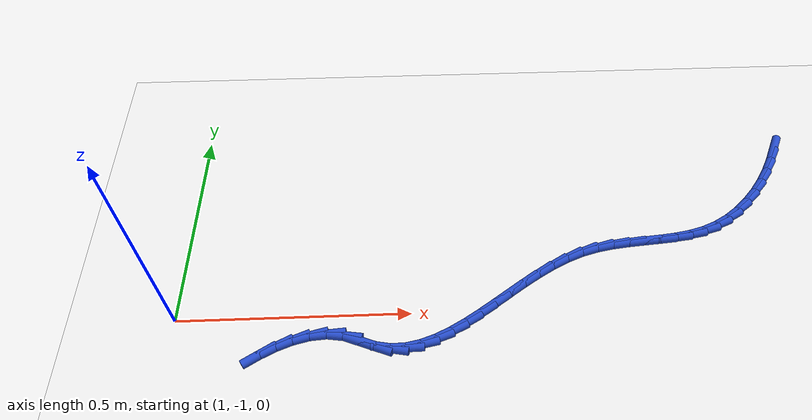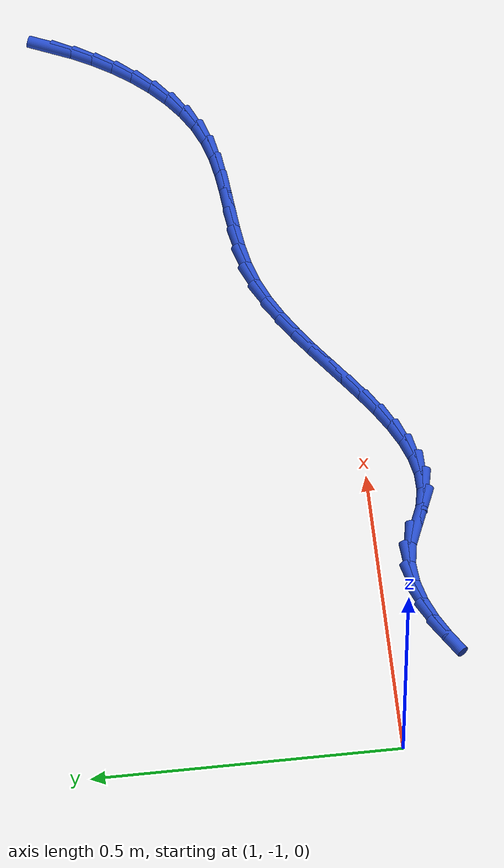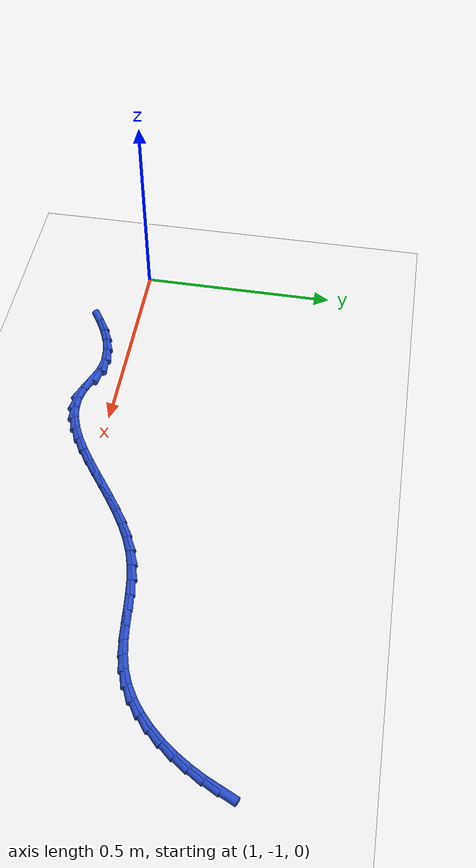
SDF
<sdf version="1.6">
 <world name="default">
  <model name="ground_plane">
   <static>1</static>
   <link name="link">
    <collision name="collision">
     <geometry><plane><normal>0 0 1</normal><size>100 100</size></plane></geometry>
     <surface><friction><ode><mu>100</mu><mu2>50</mu2></ode></friction></surface>
    </collision>
    <visual name="visual">
     <cast_shadows>0</cast_shadows>
     <geometry><plane><normal>0 0 1</normal><size>100 100</size></plane></geometry>
     <material>
      <script><uri>file://media/materials/scripts/gazebo.material</uri><name>Gazebo/WhiteGlow</name></script>
     </material>
    </visual>
   </link>
  </model>
  <model name="line">
   <link name="link_137">
    <pose>2.3708870570648264 -0.5731935673799287 0.01 0 1.57 1.1596298621825376</pose>
    <collision name="collision">
     <geometry><cylinder><radius>0.01</radius><length>0.08</length></cylinder></geometry>
    </collision>
    <visual name="visual">
     <material>
      <script><name>Gazebo/Blue</name><uri>file://media/materials/scripts/gazebo.material</uri></script>
     </material>
     <geometry><cylinder><radius>0.01</radius><length>0.08</length></cylinder></geometry>
    </visual>
   </link>
   <link name="link_138">
    <pose>2.3558920071798677 -0.6075844067601226 0.01 0 1.57 1.0917882113573463</pose>
    <collision name="collision">
     <geometry><cylinder><radius>0.01</radius><length>0.08</length></cylinder></geometry>
    </collision>
    <visual name="visual">
     <material>
      <script><name>Gazebo/Blue</name><uri>file://media/materials/scripts/gazebo.material</uri></script>
     </material>
     <geometry><cylinder><radius>0.01</radius><length>0.08</length></cylinder></geometry>
    </visual>
   </link>
   <link name="link_139">
    <pose>2.3384465963366274 -0.641175212286273 0.01 0 1.57 1.0210440977645936</pose>
    <collision name="collision">
     <geometry><cylinder><radius>0.01</radius><length>0.08</length></cylinder></geometry>
    </collision>
    <visual name="visual">
     <material>
      <script><name>Gazebo/Blue</name><uri>file://media/materials/scripts/gazebo.material</uri></script>
     </material>
     <geometry><cylinder><radius>0.01</radius><length>0.08</length></cylinder></geometry>
    </visual>
   </link>
   <link name="link_140">
    <pose>2.3186629321636327 -0.6734611374246325 0.01 0 1.57 0.9453280579679894</pose>
    <collision name="collision">
     <geometry><cylinder><radius>0.01</radius><length>0.08</length></cylinder></geometry>
    </collision>
    <visual name="visual">
     <material>
      <script><name>Gazebo/Blue</name><uri>file://media/materials/scripts/gazebo.material</uri></script>
     </material>
     <geometry><cylinder><radius>0.01</radius><length>0.08</length></cylinder></geometry>
    </visual>
   </link>
   <link name="link_141">
    <pose>2.296653122289414 -0.7039373356414512 0.01 0 1.57 0.8624707876830311</pose>
    <collision name="collision">
     <geometry><cylinder><radius>0.01</radius><length>0.08</length></cylinder></geometry>
    </collision>
    <visual name="visual">
     <material>
      <script><name>Gazebo/Blue</name><uri>file://media/materials/scripts/gazebo.material</uri></script>
     </material>
     <geometry><cylinder><radius>0.01</radius><length>0.08</length></cylinder></geometry>
    </visual>
   </link>
   <link name="link_142">
    <pose>2.2725292743425003 -0.7320989604029818 0.01 0 1.57 0.7701748529306178</pose>
    <collision name="collision">
     <geometry><cylinder><radius>0.01</radius><length>0.08</length></cylinder></geometry>
    </collision>
    <visual name="visual">
     <material>
      <script><name>Gazebo/Blue</name><uri>file://media/materials/scripts/gazebo.material</uri></script>
     </material>
     <geometry><cylinder><radius>0.01</radius><length>0.08</length></cylinder></geometry>
    </visual>
   </link>
   <link name="link_143">
    <pose>2.2464034959514216 -0.7574411651754763 0.01 0 1.57 0.6660945845559505</pose>
    <collision name="collision">
     <geometry><cylinder><radius>0.01</radius><length>0.08</length></cylinder></geometry>
    </collision>
    <visual name="visual">
     <material>
      <script><name>Gazebo/Blue</name><uri>file://media/materials/scripts/gazebo.material</uri></script>
     </material>
     <geometry><cylinder><radius>0.01</radius><length>0.08</length></cylinder></geometry>
    </visual>
   </link>
   <link name="link_144">
    <pose>2.2183878947447058 -0.7794591034251869 0.01 0 1.57 0.5481044729739689</pose>
    <collision name="collision">
     <geometry><cylinder><radius>0.01</radius><length>0.08</length></cylinder></geometry>
    </collision>
    <visual name="visual">
     <material>
      <script><name>Gazebo/Blue</name><uri>file://media/materials/scripts/gazebo.material</uri></script>
     </material>
     <geometry><cylinder><radius>0.01</radius><length>0.08</length></cylinder></geometry>
    </visual>
   </link>
   <link name="link_145">
    <pose>2.1885945783508842 -0.7976479286183644 0.01 0 1.57 0.41503316987592326</pose>
    <collision name="collision">
     <geometry><cylinder><radius>0.01</radius><length>0.08</length></cylinder></geometry>
    </collision>
    <visual name="visual">
     <material>
      <script><name>Gazebo/Blue</name><uri>file://media/materials/scripts/gazebo.material</uri></script>
     </material>
     <geometry><cylinder><radius>0.01</radius><length>0.08</length></cylinder></geometry>
    </visual>
   </link>
   <link name="link_146">
    <pose>2.1571363699446304 -0.8115093065041733 0.01 0 1.57 0.2833095171176862</pose>
    <collision name="collision">
     <geometry><cylinder><radius>0.01</radius><length>0.08</length></cylinder></geometry>
    </collision>
    <visual name="visual">
     <material>
      <script><name>Gazebo/Blue</name><uri>file://media/materials/scripts/gazebo.material</uri></script>
     </material>
     <geometry><cylinder><radius>0.01</radius><length>0.08</length></cylinder></geometry>
    </visual>
   </link>
   <link name="link_147">
    <pose>2.1241873181427695 -0.8211021239191243 0.01 0 1.57 0.18406096016276424</pose>
    <collision name="collision">
     <geometry><cylinder><radius>0.01</radius><length>0.08</length></cylinder></geometry>
    </collision>
    <visual name="visual">
     <material>
      <script><name>Gazebo/Blue</name><uri>file://media/materials/scripts/gazebo.material</uri></script>
     </material>
     <geometry><cylinder><radius>0.01</radius><length>0.08</length></cylinder></geometry>
    </visual>
   </link>
   <link name="link_148">
    <pose>2.0900287215490065 -0.8274613644367077 0.01 0 1.57 0.12083839831468332</pose>
    <collision name="collision">
     <geometry><cylinder><radius>0.01</radius><length>0.08</length></cylinder></geometry>
    </collision>
    <visual name="visual">
     <material>
      <script><name>Gazebo/Blue</name><uri>file://media/materials/scripts/gazebo.material</uri></script>
     </material>
     <geometry><cylinder><radius>0.01</radius><length>0.08</length></cylinder></geometry>
    </visual>
   </link>
   <link name="link_149">
    <pose>2.0549527161551473 -0.8317206441754708 0.01 0 1.57 0.09197553911301995</pose>
    <collision name="collision">
     <geometry><cylinder><radius>0.01</radius><length>0.08</length></cylinder></geometry>
    </collision>
    <visual name="visual">
     <material>
      <script><name>Gazebo/Blue</name><uri>file://media/materials/scripts/gazebo.material</uri></script>
     </material>
     <geometry><cylinder><radius>0.01</radius><length>0.08</length></cylinder></geometry>
    </visual>
   </link>
   <link name="link_150">
    <pose>2.0192514379529967 -0.8350135792539621 0.01 0 1.57 0.09573153017924131</pose>
    <collision name="collision">
     <geometry><cylinder><radius>0.01</radius><length>0.08</length></cylinder></geometry>
    </collision>
    <visual name="visual">
     <material>
      <script><name>Gazebo/Blue</name><uri>file://media/materials/scripts/gazebo.material</uri></script>
     </material>
     <geometry><cylinder><radius>0.01</radius><length>0.08</length></cylinder></geometry>
    </visual>
   </link>
   <link name="link_151">
    <pose>1.9832170229343595 -0.8384737857907304 0.01 0 1.57 0.13121780855544637</pose>
    <collision name="collision">
     <geometry><cylinder><radius>0.01</radius><length>0.08</length></cylinder></geometry>
    </collision>
    <visual name="visual">
     <material>
      <script><name>Gazebo/Blue</name><uri>file://media/materials/scripts/gazebo.material</uri></script>
     </material>
     <geometry><cylinder><radius>0.01</radius><length>0.08</length></cylinder></geometry>
    </visual>
   </link>
   <link name="link_152">
    <pose>1.9471416070910406 -0.8432348799043231 0.01 0 1.57 0.19822054271662398</pose>
    <collision name="collision">
     <geometry><cylinder><radius>0.01</radius><length>0.08</length></cylinder></geometry>
    </collision>
    <visual name="visual">
     <material>
      <script><name>Gazebo/Blue</name><uri>file://media/materials/scripts/gazebo.material</uri></script>
     </material>
     <geometry><cylinder><radius>0.01</radius><length>0.08</length></cylinder></geometry>
    </visual>
   </link>
   <link name="link_153">
    <pose>1.9113173264148455 -0.8504304777132893 0.01 0 1.57 0.2960983014942142</pose>
    <collision name="collision">
     <geometry><cylinder><radius>0.01</radius><length>0.08</length></cylinder></geometry>
    </collision>
    <visual name="visual">
     <material>
      <script><name>Gazebo/Blue</name><uri>file://media/materials/scripts/gazebo.material</uri></script>
     </material>
     <geometry><cylinder><radius>0.01</radius><length>0.08</length></cylinder></geometry>
    </visual>
   </link>
   <link name="link_154">
    <pose>1.8760361981524536 -0.8611935621595855 0.01 0 1.57 0.40958274245974613</pose>
    <collision name="collision">
     <geometry><cylinder><radius>0.01</radius><length>0.08</length></cylinder></geometry>
    </collision>
    <visual name="visual">
     <material>
      <script><name>Gazebo/Blue</name><uri>file://media/materials/scripts/gazebo.material</uri></script>
     </material>
     <geometry><cylinder><radius>0.01</radius><length>0.08</length></cylinder></geometry>
    </visual>
   </link>
   <link name="link_155">
    <pose>1.841501908312536 -0.876186113512509 0.01 0 1.57 0.5022183117229172</pose>
    <collision name="collision">
     <geometry><cylinder><radius>0.01</radius><length>0.08</length></cylinder></geometry>
    </collision>
    <visual name="visual">
     <material>
      <script><name>Gazebo/Blue</name><uri>file://media/materials/scripts/gazebo.material</uri></script>
     </material>
     <geometry><cylinder><radius>0.01</radius><length>0.08</length></cylinder></geometry>
    </visual>
   </link>
   <link name="link_156">
    <pose>1.8076732609886215 -0.8947643448051819 0.01 0 1.57 0.5702456691843218</pose>
    <collision name="collision">
     <geometry><cylinder><radius>0.01</radius><length>0.08</length></cylinder></geometry>
    </collision>
    <visual name="visual">
     <material>
      <script><name>Gazebo/Blue</name><uri>file://media/materials/scripts/gazebo.material</uri></script>
     </material>
     <geometry><cylinder><radius>0.01</radius><length>0.08</length></cylinder></geometry>
    </visual>
   </link>
   <link name="link_157">
    <pose>1.774466971709071 -0.916060043067765 0.01 0 1.57 0.6164125976126277</pose>
    <collision name="collision">
     <geometry><cylinder><radius>0.01</radius><length>0.08</length></cylinder></geometry>
    </collision>
    <visual name="visual">
     <material>
      <script><name>Gazebo/Blue</name><uri>file://media/materials/scripts/gazebo.material</uri></script>
     </material>
     <geometry><cylinder><radius>0.01</radius><length>0.08</length></cylinder></geometry>
    </visual>
   </link>
   <link name="link_158">
    <pose>1.7417997560022476 -0.9392049953304185 0.01 0 1.57 0.6428535377749413</pose>
    <collision name="collision">
     <geometry><cylinder><radius>0.01</radius><length>0.08</length></cylinder></geometry>
    </collision>
    <visual name="visual">
     <material>
      <script><name>Gazebo/Blue</name><uri>file://media/materials/scripts/gazebo.material</uri></script>
     </material>
     <geometry><cylinder><radius>0.01</radius><length>0.08</length></cylinder></geometry>
    </visual>
   </link>
   <link name="link_159">
    <pose>1.7095883293965115 -0.9633309886233036 0.01 0 1.57 0.6506909884554434</pose>
    <collision name="collision">
     <geometry><cylinder><radius>0.01</radius><length>0.08</length></cylinder></geometry>
    </collision>
    <visual name="visual">
     <material>
      <script><name>Gazebo/Blue</name><uri>file://media/materials/scripts/gazebo.material</uri></script>
     </material>
     <geometry><cylinder><radius>0.01</radius><length>0.08</length></cylinder></geometry>
    </visual>
   </link>
   <link name="link_160">
    <pose>1.6777494074202242 -0.9875698099765813 0.01 0 1.57 0.6398633781134743</pose>
    <collision name="collision">
     <geometry><cylinder><radius>0.01</radius><length>0.08</length></cylinder></geometry>
    </collision>
    <visual name="visual">
     <material>
      <script><name>Gazebo/Blue</name><uri>file://media/materials/scripts/gazebo.material</uri></script>
     </material>
     <geometry><cylinder><radius>0.01</radius><length>0.08</length></cylinder></geometry>
    </visual>
   </link>
   <link name="link_161">
    <pose>1.646199705601747 -1.0110532464204123 0.01 0 1.57 0.6089938062599312</pose>
    <collision name="collision">
     <geometry><cylinder><radius>0.01</radius><length>0.08</length></cylinder></geometry>
    </collision>
    <visual name="visual">
     <material>
      <script><name>Gazebo/Blue</name><uri>file://media/materials/scripts/gazebo.material</uri></script>
     </material>
     <geometry><cylinder><radius>0.01</radius><length>0.08</length></cylinder></geometry>
    </visual>
   </link>
   <link name="link_162">
    <pose>1.6148559394694408 -1.0329130849849586 0.01 0 1.57 0.5552487147375395</pose>
    <collision name="collision">
     <geometry><cylinder><radius>0.01</radius><length>0.08</length></cylinder></geometry>
    </collision>
    <visual name="visual">
     <material>
      <script><name>Gazebo/Blue</name><uri>file://media/materials/scripts/gazebo.material</uri></script>
     </material>
     <geometry><cylinder><radius>0.01</radius><length>0.08</length></cylinder></geometry>
    </visual>
   </link>
   <link name="link_163">
    <pose>1.5836348245516676 -1.0522811127003786 0.01 0 1.57 0.47429214312702694</pose>
    <collision name="collision">
     <geometry><cylinder><radius>0.01</radius><length>0.08</length></cylinder></geometry>
    </collision>
    <visual name="visual">
     <material>
      <script><name>Gazebo/Blue</name><uri>file://media/materials/scripts/gazebo.material</uri></script>
     </material>
     <geometry><cylinder><radius>0.01</radius><length>0.08</length></cylinder></geometry>
    </visual>
   </link>
   <link name="link_164">
    <pose>1.5524530763767892 -1.0682891165968353 0.01 0 1.57 0.3607385783768617</pose>
    <collision name="collision">
     <geometry><cylinder><radius>0.01</radius><length>0.08</length></cylinder></geometry>
    </collision>
    <visual name="visual">
     <material>
      <script><name>Gazebo/Blue</name><uri>file://media/materials/scripts/gazebo.material</uri></script>
     </material>
     <geometry><cylinder><radius>0.01</radius><length>0.08</length></cylinder></geometry>
    </visual>
   </link>
   <link name="link_165">
    <pose>1.5212274104731662 -1.080068883704489 0.01 0 1.57 0.21002106340397958</pose>
    <collision name="collision">
     <geometry><cylinder><radius>0.01</radius><length>0.08</length></cylinder></geometry>
    </collision>
    <visual name="visual">
     <material>
      <script><name>Gazebo/Blue</name><uri>file://media/materials/scripts/gazebo.material</uri></script>
     </material>
     <geometry><cylinder><radius>0.01</radius><length>0.08</length></cylinder></geometry>
    </visual>
   </link>
   <link name="link_166">
    <pose>1.489874542369159 -1.0867522010535 0.01 0 1.57 0.02276470540317119</pose>
    <collision name="collision">
     <geometry><cylinder><radius>0.01</radius><length>0.08</length></cylinder></geometry>
    </collision>
    <visual name="visual">
     <material>
      <script><name>Gazebo/Blue</name><uri>file://media/materials/scripts/gazebo.material</uri></script>
     </material>
     <geometry><cylinder><radius>0.01</radius><length>0.08</length></cylinder></geometry>
    </visual>
   </link>
   <link name="link_167">
    <pose>1.4583111875931318 -1.08747085567403 0.01 0 1.57 -0.18962049468895933</pose>
    <collision name="collision">
     <geometry><cylinder><radius>0.01</radius><length>0.08</length></cylinder></geometry>
    </collision>
    <visual name="visual">
     <material>
      <script><name>Gazebo/Blue</name><uri>file://media/materials/scripts/gazebo.material</uri></script>
     </material>
     <geometry><cylinder><radius>0.01</radius><length>0.08</length></cylinder></geometry>
    </visual>
   </link>
   <link name="link_168">
    <pose>1.4264540616734436 -1.0813566345962393 0.01 0 1.57 -0.38144443856768184</pose>
    <collision name="collision">
     <geometry><cylinder><radius>0.01</radius><length>0.08</length></cylinder></geometry>
    </collision>
    <visual name="visual">
     <material>
      <script><name>Gazebo/Blue</name><uri>file://media/materials/scripts/gazebo.material</uri></script>
     </material>
     <geometry><cylinder><radius>0.01</radius><length>0.08</length></cylinder></geometry>
    </visual>
   </link>
   <link name="link_169">
    <pose>1.39414710065001 -1.0683986821193725 0.01 0 1.57 -0.37614163922672444</pose>
    <collision name="collision">
     <geometry><cylinder><radius>0.01</radius><length>0.08</length></cylinder></geometry>
    </collision>
    <visual name="visual">
     <material>
      <script><name>Gazebo/Blue</name><uri>file://media/materials/scripts/gazebo.material</uri></script>
     </material>
     <geometry><cylinder><radius>0.01</radius><length>0.08</length></cylinder></geometry>
    </visual>
   </link>
   <link name="link_170">
    <pose>1.360674596785553 -1.0551788607757067 0.01 0 1.57 -0.14844008665441516</pose>
    <collision name="collision">
     <geometry><cylinder><radius>0.01</radius><length>0.08</length></cylinder></geometry>
    </collision>
    <visual name="visual">
     <material>
      <script><name>Gazebo/Blue</name><uri>file://media/materials/scripts/gazebo.material</uri></script>
     </material>
     <geometry><cylinder><radius>0.01</radius><length>0.08</length></cylinder></geometry>
    </visual>
   </link>
   <link name="link_171">
    <pose>1.32539173273124 -1.049902659585112 0.01 0 1.57 0.08625628305685425</pose>
    <collision name="collision">
     <geometry><cylinder><radius>0.01</radius><length>0.08</length></cylinder></geometry>
    </collision>
    <visual name="visual">
     <material>
      <script><name>Gazebo/Blue</name><uri>file://media/materials/scripts/gazebo.material</uri></script>
     </material>
     <geometry><cylinder><radius>0.01</radius><length>0.08</length></cylinder></geometry>
    </visual>
   </link>
   <link name="link_172">
    <pose>1.2894448913554577 -1.053011013204837 0.01 0 1.57 0.26103259813196683</pose>
    <collision name="collision">
     <geometry><cylinder><radius>0.01</radius><length>0.08</length></cylinder></geometry>
    </collision>
    <visual name="visual">
     <material>
      <script><name>Gazebo/Blue</name><uri>file://media/materials/scripts/gazebo.material</uri></script>
     </material>
     <geometry><cylinder><radius>0.01</radius><length>0.08</length></cylinder></geometry>
    </visual>
   </link>
   <link name="link_173">
    <pose>1.254570284004978 -1.0623269805216649 0.01 0 1.57 0.3967693853571164</pose>
    <collision name="collision">
     <geometry><cylinder><radius>0.01</radius><length>0.08</length></cylinder></geometry>
    </collision>
    <visual name="visual">
     <material>
      <script><name>Gazebo/Blue</name><uri>file://media/materials/scripts/gazebo.material</uri></script>
     </material>
     <geometry><cylinder><radius>0.01</radius><length>0.08</length></cylinder></geometry>
    </visual>
   </link>
   <link name="link_174">
    <pose>1.221669807885222 -1.076111960867145 0.01 0 1.57 0.5021987192325162</pose>
    <collision name="collision">
     <geometry><cylinder><radius>0.01</radius><length>0.08</length></cylinder></geometry>
    </collision>
    <visual name="visual">
     <material>
      <script><name>Gazebo/Blue</name><uri>file://media/materials/scripts/gazebo.material</uri></script>
     </material>
     <geometry><cylinder><radius>0.01</radius><length>0.08</length></cylinder></geometry>
    </visual>
   </link>
   <link name="link_175">
    <pose>1.1903907973564898 -1.0932891687794724 0.01 0 1.57 0.575752687091899</pose>
    <collision name="collision">
     <geometry><cylinder><radius>0.01</radius><length>0.08</length></cylinder></geometry>
    </collision>
    <visual name="visual">
     <material>
      <script><name>Gazebo/Blue</name><uri>file://media/materials/scripts/gazebo.material</uri></script>
     </material>
     <geometry><cylinder><radius>0.01</radius><length>0.08</length></cylinder></geometry>
    </visual>
   </link>
  </model>
 </world>
</sdf>
